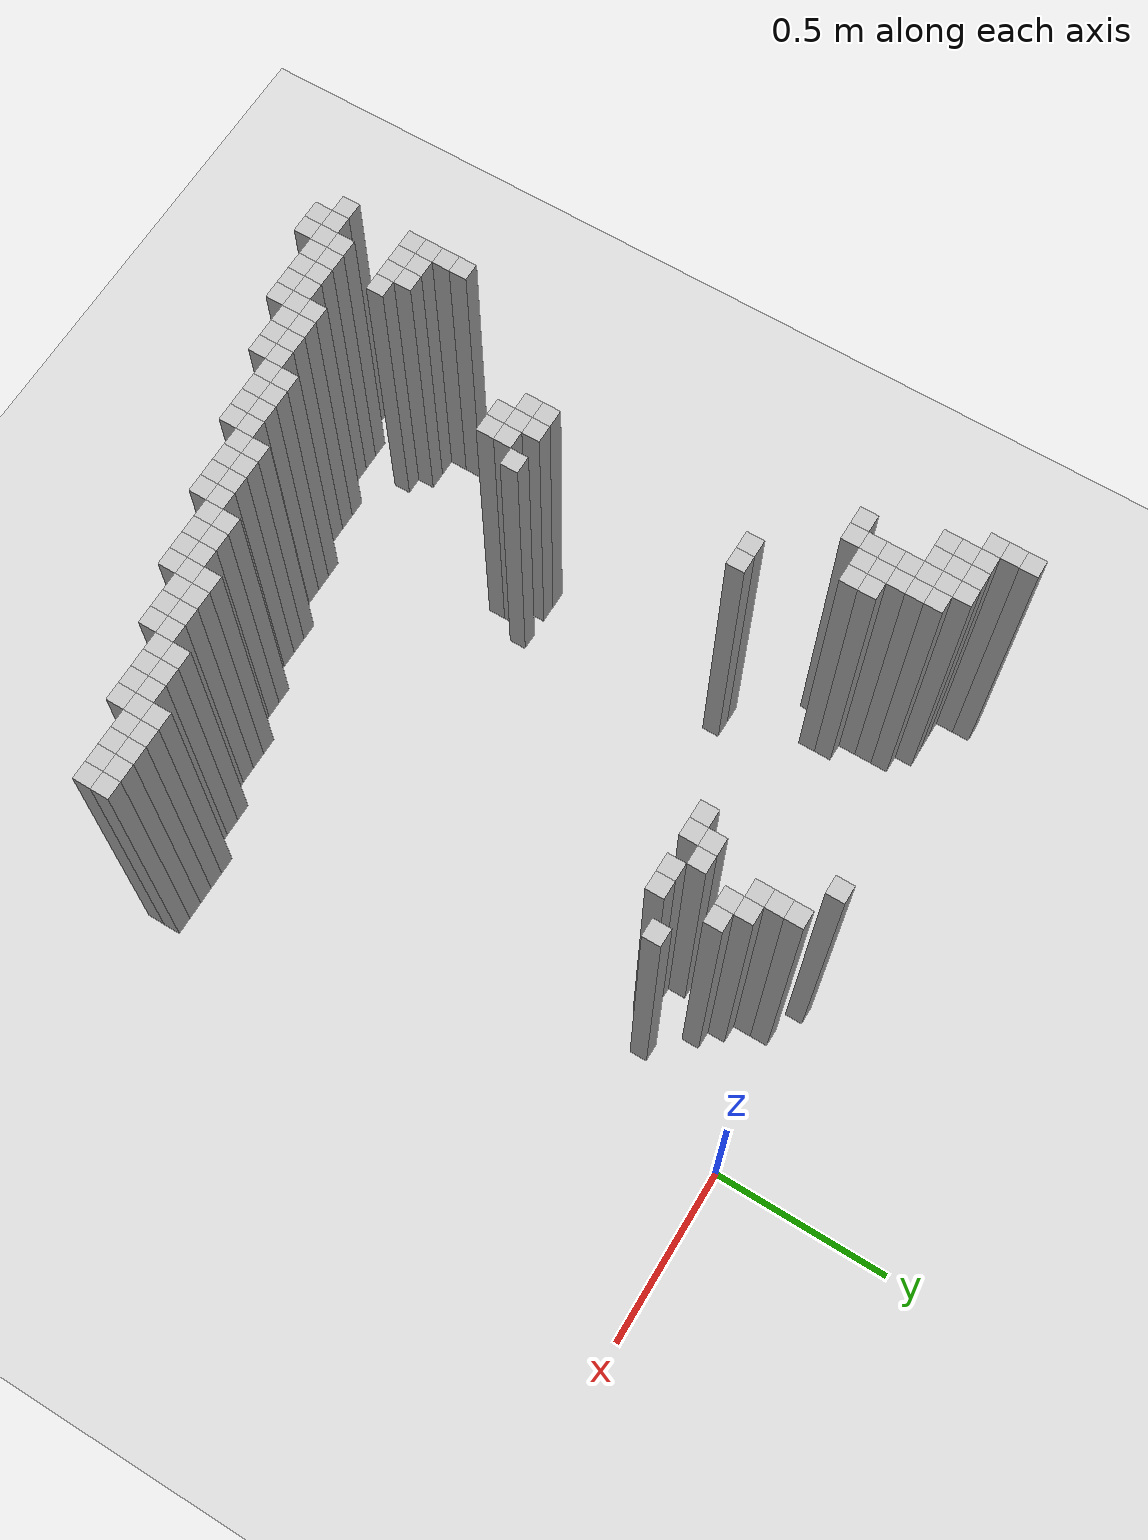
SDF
<sdf version="1.6">
 <world name="default">
  <include><uri>model://ground_plane</uri></include>
  <include><uri>model://sun</uri></include>
  <model name="wall_385">
   <static>true</static>
   <pose>-1.4399999999999997 -0.03000000000000025 0.5 0 0 0</pose>
   <link name="link">
    <collision name="collision"><geometry><box><size>0.05 0.05 1</size></box></geometry></collision>
    <visual name="visual"><geometry><box><size>0.05 0.05 1</size></box></geometry></visual>
   </link>
  </model>
  <model name="wall_386">
   <static>true</static>
   <pose>-0.48999999999999977 -0.03000000000000025 0.5 0 0 0</pose>
   <link name="link">
    <collision name="collision"><geometry><box><size>0.05 0.05 1</size></box></geometry></collision>
    <visual name="visual"><geometry><box><size>0.05 0.05 1</size></box></geometry></visual>
   </link>
  </model>
  <model name="wall_396">
   <static>true</static>
   <pose>-1.4399999999999997 -0.08000000000000007 0.5 0 0 0</pose>
   <link name="link">
    <collision name="collision"><geometry><box><size>0.05 0.05 1</size></box></geometry></collision>
    <visual name="visual"><geometry><box><size>0.05 0.05 1</size></box></geometry></visual>
   </link>
  </model>
  <model name="wall_397">
   <static>true</static>
   <pose>-0.3899999999999997 -0.08000000000000007 0.5 0 0 0</pose>
   <link name="link">
    <collision name="collision"><geometry><box><size>0.05 0.05 1</size></box></geometry></collision>
    <visual name="visual"><geometry><box><size>0.05 0.05 1</size></box></geometry></visual>
   </link>
  </model>
  <model name="wall_407">
   <static>true</static>
   <pose>-1.4399999999999997 -0.1299999999999999 0.5 0 0 0</pose>
   <link name="link">
    <collision name="collision"><geometry><box><size>0.05 0.05 1</size></box></geometry></collision>
    <visual name="visual"><geometry><box><size>0.05 0.05 1</size></box></geometry></visual>
   </link>
  </model>
  <model name="wall_408">
   <static>true</static>
   <pose>-1.3899999999999997 -0.1299999999999999 0.5 0 0 0</pose>
   <link name="link">
    <collision name="collision"><geometry><box><size>0.05 0.05 1</size></box></geometry></collision>
    <visual name="visual"><geometry><box><size>0.05 0.05 1</size></box></geometry></visual>
   </link>
  </model>
  <model name="wall_409">
   <static>true</static>
   <pose>-1.3399999999999999 -0.1299999999999999 0.5 0 0 0</pose>
   <link name="link">
    <collision name="collision"><geometry><box><size>0.05 0.05 1</size></box></geometry></collision>
    <visual name="visual"><geometry><box><size>0.05 0.05 1</size></box></geometry></visual>
   </link>
  </model>
  <model name="wall_410">
   <static>true</static>
   <pose>-1.2899999999999998 -0.1299999999999999 0.5 0 0 0</pose>
   <link name="link">
    <collision name="collision"><geometry><box><size>0.05 0.05 1</size></box></geometry></collision>
    <visual name="visual"><geometry><box><size>0.05 0.05 1</size></box></geometry></visual>
   </link>
  </model>
  <model name="wall_411">
   <static>true</static>
   <pose>-0.3899999999999997 -0.1299999999999999 0.5 0 0 0</pose>
   <link name="link">
    <collision name="collision"><geometry><box><size>0.05 0.05 1</size></box></geometry></collision>
    <visual name="visual"><geometry><box><size>0.05 0.05 1</size></box></geometry></visual>
   </link>
  </model>
  <model name="wall_417">
   <static>true</static>
   <pose>-1.3899999999999997 -0.18000000000000016 0.5 0 0 0</pose>
   <link name="link">
    <collision name="collision"><geometry><box><size>0.05 0.05 1</size></box></geometry></collision>
    <visual name="visual"><geometry><box><size>0.05 0.05 1</size></box></geometry></visual>
   </link>
  </model>
  <model name="wall_418">
   <static>true</static>
   <pose>-1.3399999999999999 -0.18000000000000016 0.5 0 0 0</pose>
   <link name="link">
    <collision name="collision"><geometry><box><size>0.05 0.05 1</size></box></geometry></collision>
    <visual name="visual"><geometry><box><size>0.05 0.05 1</size></box></geometry></visual>
   </link>
  </model>
  <model name="wall_419">
   <static>true</static>
   <pose>-1.2899999999999998 -0.18000000000000016 0.5 0 0 0</pose>
   <link name="link">
    <collision name="collision"><geometry><box><size>0.05 0.05 1</size></box></geometry></collision>
    <visual name="visual"><geometry><box><size>0.05 0.05 1</size></box></geometry></visual>
   </link>
  </model>
  <model name="wall_420">
   <static>true</static>
   <pose>-1.2399999999999998 -0.18000000000000016 0.5 0 0 0</pose>
   <link name="link">
    <collision name="collision"><geometry><box><size>0.05 0.05 1</size></box></geometry></collision>
    <visual name="visual"><geometry><box><size>0.05 0.05 1</size></box></geometry></visual>
   </link>
  </model>
  <model name="wall_421">
   <static>true</static>
   <pose>-0.3899999999999997 -0.18000000000000016 0.5 0 0 0</pose>
   <link name="link">
    <collision name="collision"><geometry><box><size>0.05 0.05 1</size></box></geometry></collision>
    <visual name="visual"><geometry><box><size>0.05 0.05 1</size></box></geometry></visual>
   </link>
  </model>
  <model name="wall_422">
   <static>true</static>
   <pose>-0.33999999999999986 -0.18000000000000016 0.5 0 0 0</pose>
   <link name="link">
    <collision name="collision"><geometry><box><size>0.05 0.05 1</size></box></geometry></collision>
    <visual name="visual"><geometry><box><size>0.05 0.05 1</size></box></geometry></visual>
   </link>
  </model>
  <model name="wall_425">
   <static>true</static>
   <pose>-1.3899999999999997 -0.22999999999999998 0.5 0 0 0</pose>
   <link name="link">
    <collision name="collision"><geometry><box><size>0.05 0.05 1</size></box></geometry></collision>
    <visual name="visual"><geometry><box><size>0.05 0.05 1</size></box></geometry></visual>
   </link>
  </model>
  <model name="wall_426">
   <static>true</static>
   <pose>-1.3399999999999999 -0.22999999999999998 0.5 0 0 0</pose>
   <link name="link">
    <collision name="collision"><geometry><box><size>0.05 0.05 1</size></box></geometry></collision>
    <visual name="visual"><geometry><box><size>0.05 0.05 1</size></box></geometry></visual>
   </link>
  </model>
  <model name="wall_427">
   <static>true</static>
   <pose>-1.2899999999999998 -0.22999999999999998 0.5 0 0 0</pose>
   <link name="link">
    <collision name="collision"><geometry><box><size>0.05 0.05 1</size></box></geometry></collision>
    <visual name="visual"><geometry><box><size>0.05 0.05 1</size></box></geometry></visual>
   </link>
  </model>
  <model name="wall_428">
   <static>true</static>
   <pose>-1.2399999999999998 -0.22999999999999998 0.5 0 0 0</pose>
   <link name="link">
    <collision name="collision"><geometry><box><size>0.05 0.05 1</size></box></geometry></collision>
    <visual name="visual"><geometry><box><size>0.05 0.05 1</size></box></geometry></visual>
   </link>
  </model>
  <model name="wall_429">
   <static>true</static>
   <pose>-0.33999999999999986 -0.22999999999999998 0.5 0 0 0</pose>
   <link name="link">
    <collision name="collision"><geometry><box><size>0.05 0.05 1</size></box></geometry></collision>
    <visual name="visual"><geometry><box><size>0.05 0.05 1</size></box></geometry></visual>
   </link>
  </model>
  <model name="wall_430">
   <static>true</static>
   <pose>-0.2899999999999996 -0.22999999999999998 0.5 0 0 0</pose>
   <link name="link">
    <collision name="collision"><geometry><box><size>0.05 0.05 1</size></box></geometry></collision>
    <visual name="visual"><geometry><box><size>0.05 0.05 1</size></box></geometry></visual>
   </link>
  </model>
  <model name="wall_433">
   <static>true</static>
   <pose>-1.2899999999999998 -0.28 0.5 0 0 0</pose>
   <link name="link">
    <collision name="collision"><geometry><box><size>0.05 0.05 1</size></box></geometry></collision>
    <visual name="visual"><geometry><box><size>0.05 0.05 1</size></box></geometry></visual>
   </link>
  </model>
  <model name="wall_434">
   <static>true</static>
   <pose>-1.2399999999999998 -0.28 0.5 0 0 0</pose>
   <link name="link">
    <collision name="collision"><geometry><box><size>0.05 0.05 1</size></box></geometry></collision>
    <visual name="visual"><geometry><box><size>0.05 0.05 1</size></box></geometry></visual>
   </link>
  </model>
  <model name="wall_438">
   <static>true</static>
   <pose>-1.2899999999999998 -0.33000000000000007 0.5 0 0 0</pose>
   <link name="link">
    <collision name="collision"><geometry><box><size>0.05 0.05 1</size></box></geometry></collision>
    <visual name="visual"><geometry><box><size>0.05 0.05 1</size></box></geometry></visual>
   </link>
  </model>
  <model name="wall_439">
   <static>true</static>
   <pose>-1.2399999999999998 -0.33000000000000007 0.5 0 0 0</pose>
   <link name="link">
    <collision name="collision"><geometry><box><size>0.05 0.05 1</size></box></geometry></collision>
    <visual name="visual"><geometry><box><size>0.05 0.05 1</size></box></geometry></visual>
   </link>
  </model>
  <model name="wall_440">
   <static>true</static>
   <pose>-1.1899999999999997 -0.33000000000000007 0.5 0 0 0</pose>
   <link name="link">
    <collision name="collision"><geometry><box><size>0.05 0.05 1</size></box></geometry></collision>
    <visual name="visual"><geometry><box><size>0.05 0.05 1</size></box></geometry></visual>
   </link>
  </model>
  <model name="wall_441">
   <static>true</static>
   <pose>-0.4399999999999995 -0.33000000000000007 0.5 0 0 0</pose>
   <link name="link">
    <collision name="collision"><geometry><box><size>0.05 0.05 1</size></box></geometry></collision>
    <visual name="visual"><geometry><box><size>0.05 0.05 1</size></box></geometry></visual>
   </link>
  </model>
  <model name="wall_442">
   <static>true</static>
   <pose>-0.3899999999999997 -0.33000000000000007 0.5 0 0 0</pose>
   <link name="link">
    <collision name="collision"><geometry><box><size>0.05 0.05 1</size></box></geometry></collision>
    <visual name="visual"><geometry><box><size>0.05 0.05 1</size></box></geometry></visual>
   </link>
  </model>
  <model name="wall_443">
   <static>true</static>
   <pose>-0.1899999999999995 -0.33000000000000007 0.5 0 0 0</pose>
   <link name="link">
    <collision name="collision"><geometry><box><size>0.05 0.05 1</size></box></geometry></collision>
    <visual name="visual"><geometry><box><size>0.05 0.05 1</size></box></geometry></visual>
   </link>
  </model>
  <model name="wall_446">
   <static>true</static>
   <pose>-1.2899999999999998 -0.3800000000000001 0.5 0 0 0</pose>
   <link name="link">
    <collision name="collision"><geometry><box><size>0.05 0.05 1</size></box></geometry></collision>
    <visual name="visual"><geometry><box><size>0.05 0.05 1</size></box></geometry></visual>
   </link>
  </model>
  <model name="wall_447">
   <static>true</static>
   <pose>-1.2399999999999998 -0.3800000000000001 0.5 0 0 0</pose>
   <link name="link">
    <collision name="collision"><geometry><box><size>0.05 0.05 1</size></box></geometry></collision>
    <visual name="visual"><geometry><box><size>0.05 0.05 1</size></box></geometry></visual>
   </link>
  </model>
  <model name="wall_448">
   <static>true</static>
   <pose>-1.1899999999999997 -0.3800000000000001 0.5 0 0 0</pose>
   <link name="link">
    <collision name="collision"><geometry><box><size>0.05 0.05 1</size></box></geometry></collision>
    <visual name="visual"><geometry><box><size>0.05 0.05 1</size></box></geometry></visual>
   </link>
  </model>
  <model name="wall_449">
   <static>true</static>
   <pose>-0.48999999999999977 -0.3800000000000001 0.5 0 0 0</pose>
   <link name="link">
    <collision name="collision"><geometry><box><size>0.05 0.05 1</size></box></geometry></collision>
    <visual name="visual"><geometry><box><size>0.05 0.05 1</size></box></geometry></visual>
   </link>
  </model>
  <model name="wall_450">
   <static>true</static>
   <pose>-0.4399999999999995 -0.3800000000000001 0.5 0 0 0</pose>
   <link name="link">
    <collision name="collision"><geometry><box><size>0.05 0.05 1</size></box></geometry></collision>
    <visual name="visual"><geometry><box><size>0.05 0.05 1</size></box></geometry></visual>
   </link>
  </model>
  <model name="wall_451">
   <static>true</static>
   <pose>-0.33999999999999986 -0.3800000000000001 0.5 0 0 0</pose>
   <link name="link">
    <collision name="collision"><geometry><box><size>0.05 0.05 1</size></box></geometry></collision>
    <visual name="visual"><geometry><box><size>0.05 0.05 1</size></box></geometry></visual>
   </link>
  </model>
  <model name="wall_452">
   <static>true</static>
   <pose>-0.2899999999999996 -0.3800000000000001 0.5 0 0 0</pose>
   <link name="link">
    <collision name="collision"><geometry><box><size>0.05 0.05 1</size></box></geometry></collision>
    <visual name="visual"><geometry><box><size>0.05 0.05 1</size></box></geometry></visual>
   </link>
  </model>
  <model name="wall_455">
   <static>true</static>
   <pose>-1.3399999999999999 -0.43000000000000016 0.5 0 0 0</pose>
   <link name="link">
    <collision name="collision"><geometry><box><size>0.05 0.05 1</size></box></geometry></collision>
    <visual name="visual"><geometry><box><size>0.05 0.05 1</size></box></geometry></visual>
   </link>
  </model>
  <model name="wall_456">
   <static>true</static>
   <pose>-1.2899999999999998 -0.43000000000000016 0.5 0 0 0</pose>
   <link name="link">
    <collision name="collision"><geometry><box><size>0.05 0.05 1</size></box></geometry></collision>
    <visual name="visual"><geometry><box><size>0.05 0.05 1</size></box></geometry></visual>
   </link>
  </model>
  <model name="wall_470">
   <static>true</static>
   <pose>-1.1399999999999997 -0.6300000000000001 0.5 0 0 0</pose>
   <link name="link">
    <collision name="collision"><geometry><box><size>0.05 0.05 1</size></box></geometry></collision>
    <visual name="visual"><geometry><box><size>0.05 0.05 1</size></box></geometry></visual>
   </link>
  </model>
  <model name="wall_471">
   <static>true</static>
   <pose>-1.0899999999999999 -0.6300000000000001 0.5 0 0 0</pose>
   <link name="link">
    <collision name="collision"><geometry><box><size>0.05 0.05 1</size></box></geometry></collision>
    <visual name="visual"><geometry><box><size>0.05 0.05 1</size></box></geometry></visual>
   </link>
  </model>
  <model name="wall_535">
   <static>true</static>
   <pose>-1.1899999999999997 -1.23 0.5 0 0 0</pose>
   <link name="link">
    <collision name="collision"><geometry><box><size>0.05 0.05 1</size></box></geometry></collision>
    <visual name="visual"><geometry><box><size>0.05 0.05 1</size></box></geometry></visual>
   </link>
  </model>
  <model name="wall_536">
   <static>true</static>
   <pose>-1.1399999999999997 -1.23 0.5 0 0 0</pose>
   <link name="link">
    <collision name="collision"><geometry><box><size>0.05 0.05 1</size></box></geometry></collision>
    <visual name="visual"><geometry><box><size>0.05 0.05 1</size></box></geometry></visual>
   </link>
  </model>
  <model name="wall_537">
   <static>true</static>
   <pose>-1.0399999999999998 -1.23 0.5 0 0 0</pose>
   <link name="link">
    <collision name="collision"><geometry><box><size>0.05 0.05 1</size></box></geometry></collision>
    <visual name="visual"><geometry><box><size>0.05 0.05 1</size></box></geometry></visual>
   </link>
  </model>
  <model name="wall_549">
   <static>true</static>
   <pose>-1.1899999999999997 -1.2800000000000002 0.5 0 0 0</pose>
   <link name="link">
    <collision name="collision"><geometry><box><size>0.05 0.05 1</size></box></geometry></collision>
    <visual name="visual"><geometry><box><size>0.05 0.05 1</size></box></geometry></visual>
   </link>
  </model>
  <model name="wall_550">
   <static>true</static>
   <pose>-1.1399999999999997 -1.2800000000000002 0.5 0 0 0</pose>
   <link name="link">
    <collision name="collision"><geometry><box><size>0.05 0.05 1</size></box></geometry></collision>
    <visual name="visual"><geometry><box><size>0.05 0.05 1</size></box></geometry></visual>
   </link>
  </model>
  <model name="wall_551">
   <static>true</static>
   <pose>-1.0899999999999999 -1.2800000000000002 0.5 0 0 0</pose>
   <link name="link">
    <collision name="collision"><geometry><box><size>0.05 0.05 1</size></box></geometry></collision>
    <visual name="visual"><geometry><box><size>0.05 0.05 1</size></box></geometry></visual>
   </link>
  </model>
  <model name="wall_564">
   <static>true</static>
   <pose>-1.1399999999999997 -1.33 0.5 0 0 0</pose>
   <link name="link">
    <collision name="collision"><geometry><box><size>0.05 0.05 1</size></box></geometry></collision>
    <visual name="visual"><geometry><box><size>0.05 0.05 1</size></box></geometry></visual>
   </link>
  </model>
  <model name="wall_565">
   <static>true</static>
   <pose>-1.0899999999999999 -1.33 0.5 0 0 0</pose>
   <link name="link">
    <collision name="collision"><geometry><box><size>0.05 0.05 1</size></box></geometry></collision>
    <visual name="visual"><geometry><box><size>0.05 0.05 1</size></box></geometry></visual>
   </link>
  </model>
  <model name="wall_626">
   <static>true</static>
   <pose>-0.03999999999999959 -1.58 0.5 0 0 0</pose>
   <link name="link">
    <collision name="collision"><geometry><box><size>0.05 0.05 1</size></box></geometry></collision>
    <visual name="visual"><geometry><box><size>0.05 0.05 1</size></box></geometry></visual>
   </link>
  </model>
  <model name="wall_627">
   <static>true</static>
   <pose>0.010000000000000231 -1.58 0.5 0 0 0</pose>
   <link name="link">
    <collision name="collision"><geometry><box><size>0.05 0.05 1</size></box></geometry></collision>
    <visual name="visual"><geometry><box><size>0.05 0.05 1</size></box></geometry></visual>
   </link>
  </model>
  <model name="wall_628">
   <static>true</static>
   <pose>0.0600000000000005 -1.58 0.5 0 0 0</pose>
   <link name="link">
    <collision name="collision"><geometry><box><size>0.05 0.05 1</size></box></geometry></collision>
    <visual name="visual"><geometry><box><size>0.05 0.05 1</size></box></geometry></visual>
   </link>
  </model>
  <model name="wall_629">
   <static>true</static>
   <pose>0.11000000000000032 -1.58 0.5 0 0 0</pose>
   <link name="link">
    <collision name="collision"><geometry><box><size>0.05 0.05 1</size></box></geometry></collision>
    <visual name="visual"><geometry><box><size>0.05 0.05 1</size></box></geometry></visual>
   </link>
  </model>
  <model name="wall_630">
   <static>true</static>
   <pose>0.16000000000000014 -1.58 0.5 0 0 0</pose>
   <link name="link">
    <collision name="collision"><geometry><box><size>0.05 0.05 1</size></box></geometry></collision>
    <visual name="visual"><geometry><box><size>0.05 0.05 1</size></box></geometry></visual>
   </link>
  </model>
  <model name="wall_643">
   <static>true</static>
   <pose>-1.4399999999999997 -1.6300000000000001 0.5 0 0 0</pose>
   <link name="link">
    <collision name="collision"><geometry><box><size>0.05 0.05 1</size></box></geometry></collision>
    <visual name="visual"><geometry><box><size>0.05 0.05 1</size></box></geometry></visual>
   </link>
  </model>
  <model name="wall_644">
   <static>true</static>
   <pose>-0.1899999999999995 -1.6300000000000001 0.5 0 0 0</pose>
   <link name="link">
    <collision name="collision"><geometry><box><size>0.05 0.05 1</size></box></geometry></collision>
    <visual name="visual"><geometry><box><size>0.05 0.05 1</size></box></geometry></visual>
   </link>
  </model>
  <model name="wall_645">
   <static>true</static>
   <pose>-0.13999999999999968 -1.6300000000000001 0.5 0 0 0</pose>
   <link name="link">
    <collision name="collision"><geometry><box><size>0.05 0.05 1</size></box></geometry></collision>
    <visual name="visual"><geometry><box><size>0.05 0.05 1</size></box></geometry></visual>
   </link>
  </model>
  <model name="wall_646">
   <static>true</static>
   <pose>-0.08999999999999986 -1.6300000000000001 0.5 0 0 0</pose>
   <link name="link">
    <collision name="collision"><geometry><box><size>0.05 0.05 1</size></box></geometry></collision>
    <visual name="visual"><geometry><box><size>0.05 0.05 1</size></box></geometry></visual>
   </link>
  </model>
  <model name="wall_647">
   <static>true</static>
   <pose>-0.03999999999999959 -1.6300000000000001 0.5 0 0 0</pose>
   <link name="link">
    <collision name="collision"><geometry><box><size>0.05 0.05 1</size></box></geometry></collision>
    <visual name="visual"><geometry><box><size>0.05 0.05 1</size></box></geometry></visual>
   </link>
  </model>
  <model name="wall_648">
   <static>true</static>
   <pose>0.010000000000000231 -1.6300000000000001 0.5 0 0 0</pose>
   <link name="link">
    <collision name="collision"><geometry><box><size>0.05 0.05 1</size></box></geometry></collision>
    <visual name="visual"><geometry><box><size>0.05 0.05 1</size></box></geometry></visual>
   </link>
  </model>
  <model name="wall_649">
   <static>true</static>
   <pose>0.0600000000000005 -1.6300000000000001 0.5 0 0 0</pose>
   <link name="link">
    <collision name="collision"><geometry><box><size>0.05 0.05 1</size></box></geometry></collision>
    <visual name="visual"><geometry><box><size>0.05 0.05 1</size></box></geometry></visual>
   </link>
  </model>
  <model name="wall_650">
   <static>true</static>
   <pose>0.11000000000000032 -1.6300000000000001 0.5 0 0 0</pose>
   <link name="link">
    <collision name="collision"><geometry><box><size>0.05 0.05 1</size></box></geometry></collision>
    <visual name="visual"><geometry><box><size>0.05 0.05 1</size></box></geometry></visual>
   </link>
  </model>
  <model name="wall_651">
   <static>true</static>
   <pose>0.16000000000000014 -1.6300000000000001 0.5 0 0 0</pose>
   <link name="link">
    <collision name="collision"><geometry><box><size>0.05 0.05 1</size></box></geometry></collision>
    <visual name="visual"><geometry><box><size>0.05 0.05 1</size></box></geometry></visual>
   </link>
  </model>
  <model name="wall_661">
   <static>true</static>
   <pose>-1.4399999999999997 -1.6800000000000002 0.5 0 0 0</pose>
   <link name="link">
    <collision name="collision"><geometry><box><size>0.05 0.05 1</size></box></geometry></collision>
    <visual name="visual"><geometry><box><size>0.05 0.05 1</size></box></geometry></visual>
   </link>
  </model>
  <model name="wall_662">
   <static>true</static>
   <pose>-0.3899999999999997 -1.6800000000000002 0.5 0 0 0</pose>
   <link name="link">
    <collision name="collision"><geometry><box><size>0.05 0.05 1</size></box></geometry></collision>
    <visual name="visual"><geometry><box><size>0.05 0.05 1</size></box></geometry></visual>
   </link>
  </model>
  <model name="wall_663">
   <static>true</static>
   <pose>-0.33999999999999986 -1.6800000000000002 0.5 0 0 0</pose>
   <link name="link">
    <collision name="collision"><geometry><box><size>0.05 0.05 1</size></box></geometry></collision>
    <visual name="visual"><geometry><box><size>0.05 0.05 1</size></box></geometry></visual>
   </link>
  </model>
  <model name="wall_664">
   <static>true</static>
   <pose>-0.2899999999999996 -1.6800000000000002 0.5 0 0 0</pose>
   <link name="link">
    <collision name="collision"><geometry><box><size>0.05 0.05 1</size></box></geometry></collision>
    <visual name="visual"><geometry><box><size>0.05 0.05 1</size></box></geometry></visual>
   </link>
  </model>
  <model name="wall_665">
   <static>true</static>
   <pose>-0.23999999999999977 -1.6800000000000002 0.5 0 0 0</pose>
   <link name="link">
    <collision name="collision"><geometry><box><size>0.05 0.05 1</size></box></geometry></collision>
    <visual name="visual"><geometry><box><size>0.05 0.05 1</size></box></geometry></visual>
   </link>
  </model>
  <model name="wall_666">
   <static>true</static>
   <pose>-0.1899999999999995 -1.6800000000000002 0.5 0 0 0</pose>
   <link name="link">
    <collision name="collision"><geometry><box><size>0.05 0.05 1</size></box></geometry></collision>
    <visual name="visual"><geometry><box><size>0.05 0.05 1</size></box></geometry></visual>
   </link>
  </model>
  <model name="wall_667">
   <static>true</static>
   <pose>-0.13999999999999968 -1.6800000000000002 0.5 0 0 0</pose>
   <link name="link">
    <collision name="collision"><geometry><box><size>0.05 0.05 1</size></box></geometry></collision>
    <visual name="visual"><geometry><box><size>0.05 0.05 1</size></box></geometry></visual>
   </link>
  </model>
  <model name="wall_668">
   <static>true</static>
   <pose>-0.08999999999999986 -1.6800000000000002 0.5 0 0 0</pose>
   <link name="link">
    <collision name="collision"><geometry><box><size>0.05 0.05 1</size></box></geometry></collision>
    <visual name="visual"><geometry><box><size>0.05 0.05 1</size></box></geometry></visual>
   </link>
  </model>
  <model name="wall_669">
   <static>true</static>
   <pose>-0.03999999999999959 -1.6800000000000002 0.5 0 0 0</pose>
   <link name="link">
    <collision name="collision"><geometry><box><size>0.05 0.05 1</size></box></geometry></collision>
    <visual name="visual"><geometry><box><size>0.05 0.05 1</size></box></geometry></visual>
   </link>
  </model>
  <model name="wall_674">
   <static>true</static>
   <pose>-1.4399999999999997 -1.7300000000000002 0.5 0 0 0</pose>
   <link name="link">
    <collision name="collision"><geometry><box><size>0.05 0.05 1</size></box></geometry></collision>
    <visual name="visual"><geometry><box><size>0.05 0.05 1</size></box></geometry></visual>
   </link>
  </model>
  <model name="wall_675">
   <static>true</static>
   <pose>-1.3899999999999997 -1.7300000000000002 0.5 0 0 0</pose>
   <link name="link">
    <collision name="collision"><geometry><box><size>0.05 0.05 1</size></box></geometry></collision>
    <visual name="visual"><geometry><box><size>0.05 0.05 1</size></box></geometry></visual>
   </link>
  </model>
  <model name="wall_676">
   <static>true</static>
   <pose>-1.3399999999999999 -1.7300000000000002 0.5 0 0 0</pose>
   <link name="link">
    <collision name="collision"><geometry><box><size>0.05 0.05 1</size></box></geometry></collision>
    <visual name="visual"><geometry><box><size>0.05 0.05 1</size></box></geometry></visual>
   </link>
  </model>
  <model name="wall_677">
   <static>true</static>
   <pose>-0.5399999999999996 -1.7300000000000002 0.5 0 0 0</pose>
   <link name="link">
    <collision name="collision"><geometry><box><size>0.05 0.05 1</size></box></geometry></collision>
    <visual name="visual"><geometry><box><size>0.05 0.05 1</size></box></geometry></visual>
   </link>
  </model>
  <model name="wall_678">
   <static>true</static>
   <pose>-0.48999999999999977 -1.7300000000000002 0.5 0 0 0</pose>
   <link name="link">
    <collision name="collision"><geometry><box><size>0.05 0.05 1</size></box></geometry></collision>
    <visual name="visual"><geometry><box><size>0.05 0.05 1</size></box></geometry></visual>
   </link>
  </model>
  <model name="wall_679">
   <static>true</static>
   <pose>-0.4399999999999995 -1.7300000000000002 0.5 0 0 0</pose>
   <link name="link">
    <collision name="collision"><geometry><box><size>0.05 0.05 1</size></box></geometry></collision>
    <visual name="visual"><geometry><box><size>0.05 0.05 1</size></box></geometry></visual>
   </link>
  </model>
  <model name="wall_680">
   <static>true</static>
   <pose>-0.3899999999999997 -1.7300000000000002 0.5 0 0 0</pose>
   <link name="link">
    <collision name="collision"><geometry><box><size>0.05 0.05 1</size></box></geometry></collision>
    <visual name="visual"><geometry><box><size>0.05 0.05 1</size></box></geometry></visual>
   </link>
  </model>
  <model name="wall_681">
   <static>true</static>
   <pose>-0.33999999999999986 -1.7300000000000002 0.5 0 0 0</pose>
   <link name="link">
    <collision name="collision"><geometry><box><size>0.05 0.05 1</size></box></geometry></collision>
    <visual name="visual"><geometry><box><size>0.05 0.05 1</size></box></geometry></visual>
   </link>
  </model>
  <model name="wall_682">
   <static>true</static>
   <pose>-0.2899999999999996 -1.7300000000000002 0.5 0 0 0</pose>
   <link name="link">
    <collision name="collision"><geometry><box><size>0.05 0.05 1</size></box></geometry></collision>
    <visual name="visual"><geometry><box><size>0.05 0.05 1</size></box></geometry></visual>
   </link>
  </model>
  <model name="wall_683">
   <static>true</static>
   <pose>-0.23999999999999977 -1.7300000000000002 0.5 0 0 0</pose>
   <link name="link">
    <collision name="collision"><geometry><box><size>0.05 0.05 1</size></box></geometry></collision>
    <visual name="visual"><geometry><box><size>0.05 0.05 1</size></box></geometry></visual>
   </link>
  </model>
  <model name="wall_687">
   <static>true</static>
   <pose>-1.4399999999999997 -1.7800000000000002 0.5 0 0 0</pose>
   <link name="link">
    <collision name="collision"><geometry><box><size>0.05 0.05 1</size></box></geometry></collision>
    <visual name="visual"><geometry><box><size>0.05 0.05 1</size></box></geometry></visual>
   </link>
  </model>
  <model name="wall_688">
   <static>true</static>
   <pose>-1.3899999999999997 -1.7800000000000002 0.5 0 0 0</pose>
   <link name="link">
    <collision name="collision"><geometry><box><size>0.05 0.05 1</size></box></geometry></collision>
    <visual name="visual"><geometry><box><size>0.05 0.05 1</size></box></geometry></visual>
   </link>
  </model>
  <model name="wall_689">
   <static>true</static>
   <pose>-1.3399999999999999 -1.7800000000000002 0.5 0 0 0</pose>
   <link name="link">
    <collision name="collision"><geometry><box><size>0.05 0.05 1</size></box></geometry></collision>
    <visual name="visual"><geometry><box><size>0.05 0.05 1</size></box></geometry></visual>
   </link>
  </model>
  <model name="wall_690">
   <static>true</static>
   <pose>-1.2899999999999998 -1.7800000000000002 0.5 0 0 0</pose>
   <link name="link">
    <collision name="collision"><geometry><box><size>0.05 0.05 1</size></box></geometry></collision>
    <visual name="visual"><geometry><box><size>0.05 0.05 1</size></box></geometry></visual>
   </link>
  </model>
  <model name="wall_691">
   <static>true</static>
   <pose>-0.7399999999999998 -1.7800000000000002 0.5 0 0 0</pose>
   <link name="link">
    <collision name="collision"><geometry><box><size>0.05 0.05 1</size></box></geometry></collision>
    <visual name="visual"><geometry><box><size>0.05 0.05 1</size></box></geometry></visual>
   </link>
  </model>
  <model name="wall_692">
   <static>true</static>
   <pose>-0.69 -1.7800000000000002 0.5 0 0 0</pose>
   <link name="link">
    <collision name="collision"><geometry><box><size>0.05 0.05 1</size></box></geometry></collision>
    <visual name="visual"><geometry><box><size>0.05 0.05 1</size></box></geometry></visual>
   </link>
  </model>
  <model name="wall_693">
   <static>true</static>
   <pose>-0.6399999999999997 -1.7800000000000002 0.5 0 0 0</pose>
   <link name="link">
    <collision name="collision"><geometry><box><size>0.05 0.05 1</size></box></geometry></collision>
    <visual name="visual"><geometry><box><size>0.05 0.05 1</size></box></geometry></visual>
   </link>
  </model>
  <model name="wall_694">
   <static>true</static>
   <pose>-0.5899999999999999 -1.7800000000000002 0.5 0 0 0</pose>
   <link name="link">
    <collision name="collision"><geometry><box><size>0.05 0.05 1</size></box></geometry></collision>
    <visual name="visual"><geometry><box><size>0.05 0.05 1</size></box></geometry></visual>
   </link>
  </model>
  <model name="wall_695">
   <static>true</static>
   <pose>-0.5399999999999996 -1.7800000000000002 0.5 0 0 0</pose>
   <link name="link">
    <collision name="collision"><geometry><box><size>0.05 0.05 1</size></box></geometry></collision>
    <visual name="visual"><geometry><box><size>0.05 0.05 1</size></box></geometry></visual>
   </link>
  </model>
  <model name="wall_696">
   <static>true</static>
   <pose>-0.48999999999999977 -1.7800000000000002 0.5 0 0 0</pose>
   <link name="link">
    <collision name="collision"><geometry><box><size>0.05 0.05 1</size></box></geometry></collision>
    <visual name="visual"><geometry><box><size>0.05 0.05 1</size></box></geometry></visual>
   </link>
  </model>
  <model name="wall_697">
   <static>true</static>
   <pose>-0.4399999999999995 -1.7800000000000002 0.5 0 0 0</pose>
   <link name="link">
    <collision name="collision"><geometry><box><size>0.05 0.05 1</size></box></geometry></collision>
    <visual name="visual"><geometry><box><size>0.05 0.05 1</size></box></geometry></visual>
   </link>
  </model>
  <model name="wall_698">
   <static>true</static>
   <pose>-0.3899999999999997 -1.7800000000000002 0.5 0 0 0</pose>
   <link name="link">
    <collision name="collision"><geometry><box><size>0.05 0.05 1</size></box></geometry></collision>
    <visual name="visual"><geometry><box><size>0.05 0.05 1</size></box></geometry></visual>
   </link>
  </model>
  <model name="wall_702">
   <static>true</static>
   <pose>-0.9399999999999997 -1.83 0.5 0 0 0</pose>
   <link name="link">
    <collision name="collision"><geometry><box><size>0.05 0.05 1</size></box></geometry></collision>
    <visual name="visual"><geometry><box><size>0.05 0.05 1</size></box></geometry></visual>
   </link>
  </model>
  <model name="wall_703">
   <static>true</static>
   <pose>-0.8899999999999997 -1.83 0.5 0 0 0</pose>
   <link name="link">
    <collision name="collision"><geometry><box><size>0.05 0.05 1</size></box></geometry></collision>
    <visual name="visual"><geometry><box><size>0.05 0.05 1</size></box></geometry></visual>
   </link>
  </model>
  <model name="wall_704">
   <static>true</static>
   <pose>-0.8399999999999999 -1.83 0.5 0 0 0</pose>
   <link name="link">
    <collision name="collision"><geometry><box><size>0.05 0.05 1</size></box></geometry></collision>
    <visual name="visual"><geometry><box><size>0.05 0.05 1</size></box></geometry></visual>
   </link>
  </model>
  <model name="wall_705">
   <static>true</static>
   <pose>-0.7899999999999996 -1.83 0.5 0 0 0</pose>
   <link name="link">
    <collision name="collision"><geometry><box><size>0.05 0.05 1</size></box></geometry></collision>
    <visual name="visual"><geometry><box><size>0.05 0.05 1</size></box></geometry></visual>
   </link>
  </model>
  <model name="wall_706">
   <static>true</static>
   <pose>-0.7399999999999998 -1.83 0.5 0 0 0</pose>
   <link name="link">
    <collision name="collision"><geometry><box><size>0.05 0.05 1</size></box></geometry></collision>
    <visual name="visual"><geometry><box><size>0.05 0.05 1</size></box></geometry></visual>
   </link>
  </model>
  <model name="wall_707">
   <static>true</static>
   <pose>-0.69 -1.83 0.5 0 0 0</pose>
   <link name="link">
    <collision name="collision"><geometry><box><size>0.05 0.05 1</size></box></geometry></collision>
    <visual name="visual"><geometry><box><size>0.05 0.05 1</size></box></geometry></visual>
   </link>
  </model>
  <model name="wall_708">
   <static>true</static>
   <pose>-0.6399999999999997 -1.83 0.5 0 0 0</pose>
   <link name="link">
    <collision name="collision"><geometry><box><size>0.05 0.05 1</size></box></geometry></collision>
    <visual name="visual"><geometry><box><size>0.05 0.05 1</size></box></geometry></visual>
   </link>
  </model>
  <model name="wall_709">
   <static>true</static>
   <pose>-0.5899999999999999 -1.83 0.5 0 0 0</pose>
   <link name="link">
    <collision name="collision"><geometry><box><size>0.05 0.05 1</size></box></geometry></collision>
    <visual name="visual"><geometry><box><size>0.05 0.05 1</size></box></geometry></visual>
   </link>
  </model>
  <model name="wall_712">
   <static>true</static>
   <pose>-1.1399999999999997 -1.8800000000000001 0.5 0 0 0</pose>
   <link name="link">
    <collision name="collision"><geometry><box><size>0.05 0.05 1</size></box></geometry></collision>
    <visual name="visual"><geometry><box><size>0.05 0.05 1</size></box></geometry></visual>
   </link>
  </model>
  <model name="wall_713">
   <static>true</static>
   <pose>-1.0899999999999999 -1.8800000000000001 0.5 0 0 0</pose>
   <link name="link">
    <collision name="collision"><geometry><box><size>0.05 0.05 1</size></box></geometry></collision>
    <visual name="visual"><geometry><box><size>0.05 0.05 1</size></box></geometry></visual>
   </link>
  </model>
  <model name="wall_714">
   <static>true</static>
   <pose>-1.0399999999999998 -1.8800000000000001 0.5 0 0 0</pose>
   <link name="link">
    <collision name="collision"><geometry><box><size>0.05 0.05 1</size></box></geometry></collision>
    <visual name="visual"><geometry><box><size>0.05 0.05 1</size></box></geometry></visual>
   </link>
  </model>
  <model name="wall_715">
   <static>true</static>
   <pose>-0.9899999999999998 -1.8800000000000001 0.5 0 0 0</pose>
   <link name="link">
    <collision name="collision"><geometry><box><size>0.05 0.05 1</size></box></geometry></collision>
    <visual name="visual"><geometry><box><size>0.05 0.05 1</size></box></geometry></visual>
   </link>
  </model>
  <model name="wall_716">
   <static>true</static>
   <pose>-0.9399999999999997 -1.8800000000000001 0.5 0 0 0</pose>
   <link name="link">
    <collision name="collision"><geometry><box><size>0.05 0.05 1</size></box></geometry></collision>
    <visual name="visual"><geometry><box><size>0.05 0.05 1</size></box></geometry></visual>
   </link>
  </model>
  <model name="wall_717">
   <static>true</static>
   <pose>-0.8899999999999997 -1.8800000000000001 0.5 0 0 0</pose>
   <link name="link">
    <collision name="collision"><geometry><box><size>0.05 0.05 1</size></box></geometry></collision>
    <visual name="visual"><geometry><box><size>0.05 0.05 1</size></box></geometry></visual>
   </link>
  </model>
  <model name="wall_718">
   <static>true</static>
   <pose>-0.8399999999999999 -1.8800000000000001 0.5 0 0 0</pose>
   <link name="link">
    <collision name="collision"><geometry><box><size>0.05 0.05 1</size></box></geometry></collision>
    <visual name="visual"><geometry><box><size>0.05 0.05 1</size></box></geometry></visual>
   </link>
  </model>
  <model name="wall_719">
   <static>true</static>
   <pose>-0.7899999999999996 -1.8800000000000001 0.5 0 0 0</pose>
   <link name="link">
    <collision name="collision"><geometry><box><size>0.05 0.05 1</size></box></geometry></collision>
    <visual name="visual"><geometry><box><size>0.05 0.05 1</size></box></geometry></visual>
   </link>
  </model>
  <model name="wall_722">
   <static>true</static>
   <pose>-1.3399999999999999 -1.9300000000000002 0.5 0 0 0</pose>
   <link name="link">
    <collision name="collision"><geometry><box><size>0.05 0.05 1</size></box></geometry></collision>
    <visual name="visual"><geometry><box><size>0.05 0.05 1</size></box></geometry></visual>
   </link>
  </model>
  <model name="wall_723">
   <static>true</static>
   <pose>-1.2899999999999998 -1.9300000000000002 0.5 0 0 0</pose>
   <link name="link">
    <collision name="collision"><geometry><box><size>0.05 0.05 1</size></box></geometry></collision>
    <visual name="visual"><geometry><box><size>0.05 0.05 1</size></box></geometry></visual>
   </link>
  </model>
  <model name="wall_724">
   <static>true</static>
   <pose>-1.2399999999999998 -1.9300000000000002 0.5 0 0 0</pose>
   <link name="link">
    <collision name="collision"><geometry><box><size>0.05 0.05 1</size></box></geometry></collision>
    <visual name="visual"><geometry><box><size>0.05 0.05 1</size></box></geometry></visual>
   </link>
  </model>
  <model name="wall_725">
   <static>true</static>
   <pose>-1.1899999999999997 -1.9300000000000002 0.5 0 0 0</pose>
   <link name="link">
    <collision name="collision"><geometry><box><size>0.05 0.05 1</size></box></geometry></collision>
    <visual name="visual"><geometry><box><size>0.05 0.05 1</size></box></geometry></visual>
   </link>
  </model>
  <model name="wall_726">
   <static>true</static>
   <pose>-1.1399999999999997 -1.9300000000000002 0.5 0 0 0</pose>
   <link name="link">
    <collision name="collision"><geometry><box><size>0.05 0.05 1</size></box></geometry></collision>
    <visual name="visual"><geometry><box><size>0.05 0.05 1</size></box></geometry></visual>
   </link>
  </model>
  <model name="wall_727">
   <static>true</static>
   <pose>-1.0899999999999999 -1.9300000000000002 0.5 0 0 0</pose>
   <link name="link">
    <collision name="collision"><geometry><box><size>0.05 0.05 1</size></box></geometry></collision>
    <visual name="visual"><geometry><box><size>0.05 0.05 1</size></box></geometry></visual>
   </link>
  </model>
  <model name="wall_728">
   <static>true</static>
   <pose>-1.0399999999999998 -1.9300000000000002 0.5 0 0 0</pose>
   <link name="link">
    <collision name="collision"><geometry><box><size>0.05 0.05 1</size></box></geometry></collision>
    <visual name="visual"><geometry><box><size>0.05 0.05 1</size></box></geometry></visual>
   </link>
  </model>
  <model name="wall_729">
   <static>true</static>
   <pose>-0.9899999999999998 -1.9300000000000002 0.5 0 0 0</pose>
   <link name="link">
    <collision name="collision"><geometry><box><size>0.05 0.05 1</size></box></geometry></collision>
    <visual name="visual"><geometry><box><size>0.05 0.05 1</size></box></geometry></visual>
   </link>
  </model>
  <model name="wall_735">
   <static>true</static>
   <pose>-1.4399999999999997 -1.9800000000000002 0.5 0 0 0</pose>
   <link name="link">
    <collision name="collision"><geometry><box><size>0.05 0.05 1</size></box></geometry></collision>
    <visual name="visual"><geometry><box><size>0.05 0.05 1</size></box></geometry></visual>
   </link>
  </model>
  <model name="wall_736">
   <static>true</static>
   <pose>-1.3899999999999997 -1.9800000000000002 0.5 0 0 0</pose>
   <link name="link">
    <collision name="collision"><geometry><box><size>0.05 0.05 1</size></box></geometry></collision>
    <visual name="visual"><geometry><box><size>0.05 0.05 1</size></box></geometry></visual>
   </link>
  </model>
  <model name="wall_737">
   <static>true</static>
   <pose>-1.3399999999999999 -1.9800000000000002 0.5 0 0 0</pose>
   <link name="link">
    <collision name="collision"><geometry><box><size>0.05 0.05 1</size></box></geometry></collision>
    <visual name="visual"><geometry><box><size>0.05 0.05 1</size></box></geometry></visual>
   </link>
  </model>
  <model name="wall_738">
   <static>true</static>
   <pose>-1.2899999999999998 -1.9800000000000002 0.5 0 0 0</pose>
   <link name="link">
    <collision name="collision"><geometry><box><size>0.05 0.05 1</size></box></geometry></collision>
    <visual name="visual"><geometry><box><size>0.05 0.05 1</size></box></geometry></visual>
   </link>
  </model>
  <model name="wall_739">
   <static>true</static>
   <pose>-1.2399999999999998 -1.9800000000000002 0.5 0 0 0</pose>
   <link name="link">
    <collision name="collision"><geometry><box><size>0.05 0.05 1</size></box></geometry></collision>
    <visual name="visual"><geometry><box><size>0.05 0.05 1</size></box></geometry></visual>
   </link>
  </model>
  <model name="wall_740">
   <static>true</static>
   <pose>-1.1899999999999997 -1.9800000000000002 0.5 0 0 0</pose>
   <link name="link">
    <collision name="collision"><geometry><box><size>0.05 0.05 1</size></box></geometry></collision>
    <visual name="visual"><geometry><box><size>0.05 0.05 1</size></box></geometry></visual>
   </link>
  </model>
  <model name="wall_741">
   <static>true</static>
   <pose>-1.1399999999999997 -1.9800000000000002 0.5 0 0 0</pose>
   <link name="link">
    <collision name="collision"><geometry><box><size>0.05 0.05 1</size></box></geometry></collision>
    <visual name="visual"><geometry><box><size>0.05 0.05 1</size></box></geometry></visual>
   </link>
  </model>
  <model name="wall_750">
   <static>true</static>
   <pose>-1.3899999999999997 -2.0300000000000002 0.5 0 0 0</pose>
   <link name="link">
    <collision name="collision"><geometry><box><size>0.05 0.05 1</size></box></geometry></collision>
    <visual name="visual"><geometry><box><size>0.05 0.05 1</size></box></geometry></visual>
   </link>
  </model>
  <model name="wall_751">
   <static>true</static>
   <pose>-1.3399999999999999 -2.0300000000000002 0.5 0 0 0</pose>
   <link name="link">
    <collision name="collision"><geometry><box><size>0.05 0.05 1</size></box></geometry></collision>
    <visual name="visual"><geometry><box><size>0.05 0.05 1</size></box></geometry></visual>
   </link>
  </model>
 </world>
</sdf>
